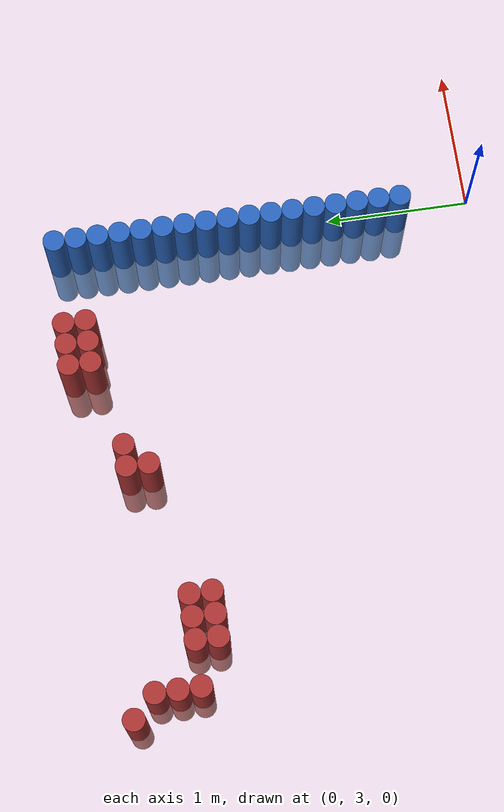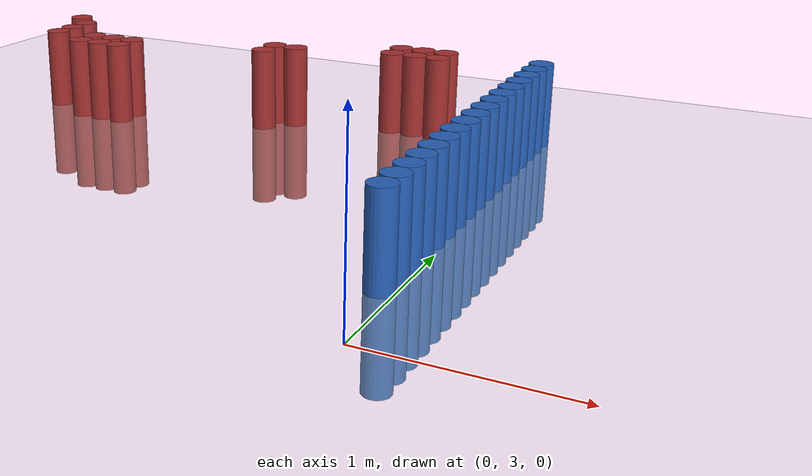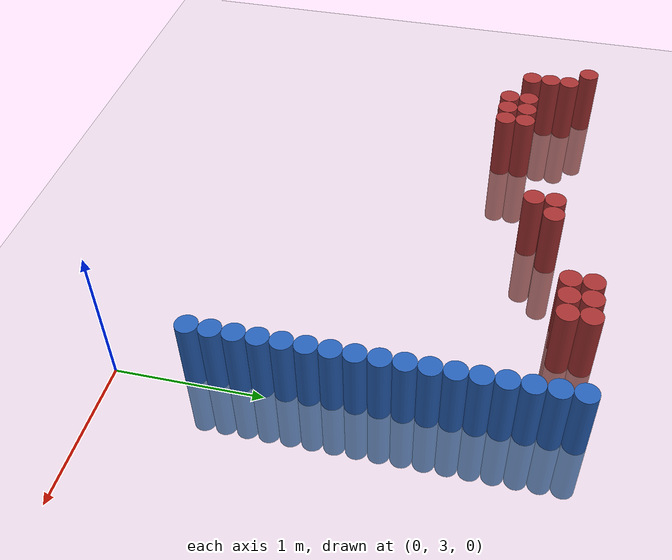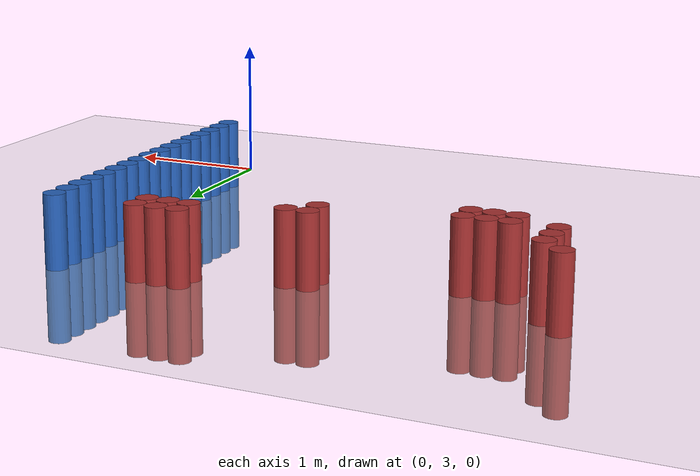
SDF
<sdf version="1.6">
 <world name="default">
  <model name="ground_plane">
   <static>1</static>
   <link name="link">
    <collision name="collision">
     <geometry><plane><normal>0 0 1</normal><size>100 100</size></plane></geometry>
     <surface><friction><ode><mu>100</mu><mu2>50</mu2></ode></friction></surface>
    </collision>
    <visual name="visual">
     <cast_shadows>0</cast_shadows>
     <geometry><plane><normal>0 0 1</normal><size>100 100</size></plane></geometry>
     <material>
      <script><uri>file://media/materials/scripts/gazebo.material</uri><name>Gazebo/Grey</name></script>
     </material>
    </visual>
   </link>
  </model>
  <model name="unit_cylinder_74">
   <static>1</static>
   <pose>-0.075000 3.525000 0.000000 0.000000 0.000000 0.000000</pose>
   <link name="link">
    <inertial>
     <mass>1</mass>
     <inertia><ixx>0.145833</ixx><ixy>0</ixy><ixz>0</ixz><iyy>0.145833</iyy><iyz>0</iyz><izz>0.125</izz></inertia>
    </inertial>
    <collision name="collision">
     <geometry><cylinder><radius>0.075000</radius><length>1</length></cylinder></geometry>
    </collision>
    <visual name="visual">
     <geometry><cylinder><radius>0.075000</radius><length>1</length></cylinder></geometry>
     <material>
      <ambient>0.152000 0.379000 0.720000 1</ambient>
      <diffuse>0.152000 0.379000 0.720000 1</diffuse>
     </material>
     <material>
      <script><name>Gazebo/Grey</name><uri>file://media/materials/scripts/gazebo.material</uri></script>
     </material>
    </visual>
    <sensor name="sensor_contact" type="contact"><contact><collision>collision</collision></contact></sensor>
   </link>
   <plugin filename="gz-sim-touchplugin-system" name="gz::sim::systems::TouchPlugin">
    <target>robot</target>
    <namespace>robot</namespace>
    <time>0.001</time>
    <enabled>true</enabled>
   </plugin>
  </model>
  <model name="unit_cylinder_76">
   <static>1</static>
   <pose>-0.075000 3.675000 0.000000 0.000000 0.000000 0.000000</pose>
   <link name="link">
    <inertial>
     <mass>1</mass>
     <inertia><ixx>0.145833</ixx><ixy>0</ixy><ixz>0</ixz><iyy>0.145833</iyy><iyz>0</iyz><izz>0.125</izz></inertia>
    </inertial>
    <collision name="collision">
     <geometry><cylinder><radius>0.075000</radius><length>1</length></cylinder></geometry>
    </collision>
    <visual name="visual">
     <geometry><cylinder><radius>0.075000</radius><length>1</length></cylinder></geometry>
     <material>
      <ambient>0.152000 0.379000 0.720000 1</ambient>
      <diffuse>0.152000 0.379000 0.720000 1</diffuse>
     </material>
     <material>
      <script><name>Gazebo/Grey</name><uri>file://media/materials/scripts/gazebo.material</uri></script>
     </material>
    </visual>
    <sensor name="sensor_contact" type="contact"><contact><collision>collision</collision></contact></sensor>
   </link>
   <plugin filename="gz-sim-touchplugin-system" name="gz::sim::systems::TouchPlugin">
    <target>robot</target>
    <namespace>robot</namespace>
    <time>0.001</time>
    <enabled>true</enabled>
   </plugin>
  </model>
  <model name="unit_cylinder_78">
   <static>1</static>
   <pose>-0.075000 3.825000 0.000000 0.000000 0.000000 0.000000</pose>
   <link name="link">
    <inertial>
     <mass>1</mass>
     <inertia><ixx>0.145833</ixx><ixy>0</ixy><ixz>0</ixz><iyy>0.145833</iyy><iyz>0</iyz><izz>0.125</izz></inertia>
    </inertial>
    <collision name="collision">
     <geometry><cylinder><radius>0.075000</radius><length>1</length></cylinder></geometry>
    </collision>
    <visual name="visual">
     <geometry><cylinder><radius>0.075000</radius><length>1</length></cylinder></geometry>
     <material>
      <ambient>0.152000 0.379000 0.720000 1</ambient>
      <diffuse>0.152000 0.379000 0.720000 1</diffuse>
     </material>
     <material>
      <script><name>Gazebo/Grey</name><uri>file://media/materials/scripts/gazebo.material</uri></script>
     </material>
    </visual>
    <sensor name="sensor_contact" type="contact"><contact><collision>collision</collision></contact></sensor>
   </link>
   <plugin filename="gz-sim-touchplugin-system" name="gz::sim::systems::TouchPlugin">
    <target>robot</target>
    <namespace>robot</namespace>
    <time>0.001</time>
    <enabled>true</enabled>
   </plugin>
  </model>
  <model name="unit_cylinder_80">
   <static>1</static>
   <pose>-0.075000 3.975000 0.000000 0.000000 0.000000 0.000000</pose>
   <link name="link">
    <inertial>
     <mass>1</mass>
     <inertia><ixx>0.145833</ixx><ixy>0</ixy><ixz>0</ixz><iyy>0.145833</iyy><iyz>0</iyz><izz>0.125</izz></inertia>
    </inertial>
    <collision name="collision">
     <geometry><cylinder><radius>0.075000</radius><length>1</length></cylinder></geometry>
    </collision>
    <visual name="visual">
     <geometry><cylinder><radius>0.075000</radius><length>1</length></cylinder></geometry>
     <material>
      <ambient>0.152000 0.379000 0.720000 1</ambient>
      <diffuse>0.152000 0.379000 0.720000 1</diffuse>
     </material>
     <material>
      <script><name>Gazebo/Grey</name><uri>file://media/materials/scripts/gazebo.material</uri></script>
     </material>
    </visual>
    <sensor name="sensor_contact" type="contact"><contact><collision>collision</collision></contact></sensor>
   </link>
   <plugin filename="gz-sim-touchplugin-system" name="gz::sim::systems::TouchPlugin">
    <target>robot</target>
    <namespace>robot</namespace>
    <time>0.001</time>
    <enabled>true</enabled>
   </plugin>
  </model>
  <model name="unit_cylinder_82">
   <static>1</static>
   <pose>-0.075000 4.125000 0.000000 0.000000 0.000000 0.000000</pose>
   <link name="link">
    <inertial>
     <mass>1</mass>
     <inertia><ixx>0.145833</ixx><ixy>0</ixy><ixz>0</ixz><iyy>0.145833</iyy><iyz>0</iyz><izz>0.125</izz></inertia>
    </inertial>
    <collision name="collision">
     <geometry><cylinder><radius>0.075000</radius><length>1</length></cylinder></geometry>
    </collision>
    <visual name="visual">
     <geometry><cylinder><radius>0.075000</radius><length>1</length></cylinder></geometry>
     <material>
      <ambient>0.152000 0.379000 0.720000 1</ambient>
      <diffuse>0.152000 0.379000 0.720000 1</diffuse>
     </material>
     <material>
      <script><name>Gazebo/Grey</name><uri>file://media/materials/scripts/gazebo.material</uri></script>
     </material>
    </visual>
    <sensor name="sensor_contact" type="contact"><contact><collision>collision</collision></contact></sensor>
   </link>
   <plugin filename="gz-sim-touchplugin-system" name="gz::sim::systems::TouchPlugin">
    <target>robot</target>
    <namespace>robot</namespace>
    <time>0.001</time>
    <enabled>true</enabled>
   </plugin>
  </model>
  <model name="unit_cylinder_84">
   <static>1</static>
   <pose>-0.075000 4.275000 0.000000 0.000000 0.000000 0.000000</pose>
   <link name="link">
    <inertial>
     <mass>1</mass>
     <inertia><ixx>0.145833</ixx><ixy>0</ixy><ixz>0</ixz><iyy>0.145833</iyy><iyz>0</iyz><izz>0.125</izz></inertia>
    </inertial>
    <collision name="collision">
     <geometry><cylinder><radius>0.075000</radius><length>1</length></cylinder></geometry>
    </collision>
    <visual name="visual">
     <geometry><cylinder><radius>0.075000</radius><length>1</length></cylinder></geometry>
     <material>
      <ambient>0.152000 0.379000 0.720000 1</ambient>
      <diffuse>0.152000 0.379000 0.720000 1</diffuse>
     </material>
     <material>
      <script><name>Gazebo/Grey</name><uri>file://media/materials/scripts/gazebo.material</uri></script>
     </material>
    </visual>
    <sensor name="sensor_contact" type="contact"><contact><collision>collision</collision></contact></sensor>
   </link>
   <plugin filename="gz-sim-touchplugin-system" name="gz::sim::systems::TouchPlugin">
    <target>robot</target>
    <namespace>robot</namespace>
    <time>0.001</time>
    <enabled>true</enabled>
   </plugin>
  </model>
  <model name="unit_cylinder_86">
   <static>1</static>
   <pose>-0.075000 4.425000 0.000000 0.000000 0.000000 0.000000</pose>
   <link name="link">
    <inertial>
     <mass>1</mass>
     <inertia><ixx>0.145833</ixx><ixy>0</ixy><ixz>0</ixz><iyy>0.145833</iyy><iyz>0</iyz><izz>0.125</izz></inertia>
    </inertial>
    <collision name="collision">
     <geometry><cylinder><radius>0.075000</radius><length>1</length></cylinder></geometry>
    </collision>
    <visual name="visual">
     <geometry><cylinder><radius>0.075000</radius><length>1</length></cylinder></geometry>
     <material>
      <ambient>0.152000 0.379000 0.720000 1</ambient>
      <diffuse>0.152000 0.379000 0.720000 1</diffuse>
     </material>
     <material>
      <script><name>Gazebo/Grey</name><uri>file://media/materials/scripts/gazebo.material</uri></script>
     </material>
    </visual>
    <sensor name="sensor_contact" type="contact"><contact><collision>collision</collision></contact></sensor>
   </link>
   <plugin filename="gz-sim-touchplugin-system" name="gz::sim::systems::TouchPlugin">
    <target>robot</target>
    <namespace>robot</namespace>
    <time>0.001</time>
    <enabled>true</enabled>
   </plugin>
  </model>
  <model name="unit_cylinder_88">
   <static>1</static>
   <pose>-0.075000 4.575000 0.000000 0.000000 0.000000 0.000000</pose>
   <link name="link">
    <inertial>
     <mass>1</mass>
     <inertia><ixx>0.145833</ixx><ixy>0</ixy><ixz>0</ixz><iyy>0.145833</iyy><iyz>0</iyz><izz>0.125</izz></inertia>
    </inertial>
    <collision name="collision">
     <geometry><cylinder><radius>0.075000</radius><length>1</length></cylinder></geometry>
    </collision>
    <visual name="visual">
     <geometry><cylinder><radius>0.075000</radius><length>1</length></cylinder></geometry>
     <material>
      <ambient>0.152000 0.379000 0.720000 1</ambient>
      <diffuse>0.152000 0.379000 0.720000 1</diffuse>
     </material>
     <material>
      <script><name>Gazebo/Grey</name><uri>file://media/materials/scripts/gazebo.material</uri></script>
     </material>
    </visual>
    <sensor name="sensor_contact" type="contact"><contact><collision>collision</collision></contact></sensor>
   </link>
   <plugin filename="gz-sim-touchplugin-system" name="gz::sim::systems::TouchPlugin">
    <target>robot</target>
    <namespace>robot</namespace>
    <time>0.001</time>
    <enabled>true</enabled>
   </plugin>
  </model>
  <model name="unit_cylinder_90">
   <static>1</static>
   <pose>-0.075000 4.725000 0.000000 0.000000 0.000000 0.000000</pose>
   <link name="link">
    <inertial>
     <mass>1</mass>
     <inertia><ixx>0.145833</ixx><ixy>0</ixy><ixz>0</ixz><iyy>0.145833</iyy><iyz>0</iyz><izz>0.125</izz></inertia>
    </inertial>
    <collision name="collision">
     <geometry><cylinder><radius>0.075000</radius><length>1</length></cylinder></geometry>
    </collision>
    <visual name="visual">
     <geometry><cylinder><radius>0.075000</radius><length>1</length></cylinder></geometry>
     <material>
      <ambient>0.152000 0.379000 0.720000 1</ambient>
      <diffuse>0.152000 0.379000 0.720000 1</diffuse>
     </material>
     <material>
      <script><name>Gazebo/Grey</name><uri>file://media/materials/scripts/gazebo.material</uri></script>
     </material>
    </visual>
    <sensor name="sensor_contact" type="contact"><contact><collision>collision</collision></contact></sensor>
   </link>
   <plugin filename="gz-sim-touchplugin-system" name="gz::sim::systems::TouchPlugin">
    <target>robot</target>
    <namespace>robot</namespace>
    <time>0.001</time>
    <enabled>true</enabled>
   </plugin>
  </model>
  <model name="unit_cylinder_92">
   <static>1</static>
   <pose>-0.075000 4.875000 0.000000 0.000000 0.000000 0.000000</pose>
   <link name="link">
    <inertial>
     <mass>1</mass>
     <inertia><ixx>0.145833</ixx><ixy>0</ixy><ixz>0</ixz><iyy>0.145833</iyy><iyz>0</iyz><izz>0.125</izz></inertia>
    </inertial>
    <collision name="collision">
     <geometry><cylinder><radius>0.075000</radius><length>1</length></cylinder></geometry>
    </collision>
    <visual name="visual">
     <geometry><cylinder><radius>0.075000</radius><length>1</length></cylinder></geometry>
     <material>
      <ambient>0.152000 0.379000 0.720000 1</ambient>
      <diffuse>0.152000 0.379000 0.720000 1</diffuse>
     </material>
     <material>
      <script><name>Gazebo/Grey</name><uri>file://media/materials/scripts/gazebo.material</uri></script>
     </material>
    </visual>
    <sensor name="sensor_contact" type="contact"><contact><collision>collision</collision></contact></sensor>
   </link>
   <plugin filename="gz-sim-touchplugin-system" name="gz::sim::systems::TouchPlugin">
    <target>robot</target>
    <namespace>robot</namespace>
    <time>0.001</time>
    <enabled>true</enabled>
   </plugin>
  </model>
  <model name="unit_cylinder_94">
   <static>1</static>
   <pose>-0.075000 5.025000 0.000000 0.000000 0.000000 0.000000</pose>
   <link name="link">
    <inertial>
     <mass>1</mass>
     <inertia><ixx>0.145833</ixx><ixy>0</ixy><ixz>0</ixz><iyy>0.145833</iyy><iyz>0</iyz><izz>0.125</izz></inertia>
    </inertial>
    <collision name="collision">
     <geometry><cylinder><radius>0.075000</radius><length>1</length></cylinder></geometry>
    </collision>
    <visual name="visual">
     <geometry><cylinder><radius>0.075000</radius><length>1</length></cylinder></geometry>
     <material>
      <ambient>0.152000 0.379000 0.720000 1</ambient>
      <diffuse>0.152000 0.379000 0.720000 1</diffuse>
     </material>
     <material>
      <script><name>Gazebo/Grey</name><uri>file://media/materials/scripts/gazebo.material</uri></script>
     </material>
    </visual>
    <sensor name="sensor_contact" type="contact"><contact><collision>collision</collision></contact></sensor>
   </link>
   <plugin filename="gz-sim-touchplugin-system" name="gz::sim::systems::TouchPlugin">
    <target>robot</target>
    <namespace>robot</namespace>
    <time>0.001</time>
    <enabled>true</enabled>
   </plugin>
  </model>
  <model name="unit_cylinder_173">
   <static>1</static>
   <pose>-3.375000 5.775000 0.000000 0.000000 0.000000 0.000000</pose>
   <link name="link">
    <inertial>
     <mass>1</mass>
     <inertia><ixx>0.145833</ixx><ixy>0</ixy><ixz>0</ixz><iyy>0.145833</iyy><iyz>0</iyz><izz>0.125</izz></inertia>
    </inertial>
    <collision name="collision">
     <geometry><cylinder><radius>0.075000</radius><length>1</length></cylinder></geometry>
    </collision>
    <visual name="visual">
     <geometry><cylinder><radius>0.075000</radius><length>1</length></cylinder></geometry>
     <material>
      <ambient>0.648000 0.192000 0.192000 1</ambient>
      <diffuse>0.648000 0.192000 0.192000 1</diffuse>
     </material>
     <material>
      <script><name>Gazebo/Grey</name><uri>file://media/materials/scripts/gazebo.material</uri></script>
     </material>
    </visual>
    <sensor name="sensor_contact" type="contact"><contact><collision>collision</collision></contact></sensor>
   </link>
   <plugin filename="gz-sim-touchplugin-system" name="gz::sim::systems::TouchPlugin">
    <target>robot</target>
    <namespace>robot</namespace>
    <time>0.001</time>
    <enabled>true</enabled>
   </plugin>
  </model>
  <model name="unit_cylinder_182">
   <static>1</static>
   <pose>-3.225000 5.325000 0.000000 0.000000 0.000000 0.000000</pose>
   <link name="link">
    <inertial>
     <mass>1</mass>
     <inertia><ixx>0.145833</ixx><ixy>0</ixy><ixz>0</ixz><iyy>0.145833</iyy><iyz>0</iyz><izz>0.125</izz></inertia>
    </inertial>
    <collision name="collision">
     <geometry><cylinder><radius>0.075000</radius><length>1</length></cylinder></geometry>
    </collision>
    <visual name="visual">
     <geometry><cylinder><radius>0.075000</radius><length>1</length></cylinder></geometry>
     <material>
      <ambient>0.648000 0.192000 0.192000 1</ambient>
      <diffuse>0.648000 0.192000 0.192000 1</diffuse>
     </material>
     <material>
      <script><name>Gazebo/Grey</name><uri>file://media/materials/scripts/gazebo.material</uri></script>
     </material>
    </visual>
    <sensor name="sensor_contact" type="contact"><contact><collision>collision</collision></contact></sensor>
   </link>
   <plugin filename="gz-sim-touchplugin-system" name="gz::sim::systems::TouchPlugin">
    <target>robot</target>
    <namespace>robot</namespace>
    <time>0.001</time>
    <enabled>true</enabled>
   </plugin>
  </model>
  <model name="unit_cylinder_183">
   <static>1</static>
   <pose>-3.225000 5.475000 0.000000 0.000000 0.000000 0.000000</pose>
   <link name="link">
    <inertial>
     <mass>1</mass>
     <inertia><ixx>0.145833</ixx><ixy>0</ixy><ixz>0</ixz><iyy>0.145833</iyy><iyz>0</iyz><izz>0.125</izz></inertia>
    </inertial>
    <collision name="collision">
     <geometry><cylinder><radius>0.075000</radius><length>1</length></cylinder></geometry>
    </collision>
    <visual name="visual">
     <geometry><cylinder><radius>0.075000</radius><length>1</length></cylinder></geometry>
     <material>
      <ambient>0.648000 0.192000 0.192000 1</ambient>
      <diffuse>0.648000 0.192000 0.192000 1</diffuse>
     </material>
     <material>
      <script><name>Gazebo/Grey</name><uri>file://media/materials/scripts/gazebo.material</uri></script>
     </material>
    </visual>
    <sensor name="sensor_contact" type="contact"><contact><collision>collision</collision></contact></sensor>
   </link>
   <plugin filename="gz-sim-touchplugin-system" name="gz::sim::systems::TouchPlugin">
    <target>robot</target>
    <namespace>robot</namespace>
    <time>0.001</time>
    <enabled>true</enabled>
   </plugin>
  </model>
  <model name="unit_cylinder_184">
   <static>1</static>
   <pose>-3.225000 5.625000 0.000000 0.000000 0.000000 0.000000</pose>
   <link name="link">
    <inertial>
     <mass>1</mass>
     <inertia><ixx>0.145833</ixx><ixy>0</ixy><ixz>0</ixz><iyy>0.145833</iyy><iyz>0</iyz><izz>0.125</izz></inertia>
    </inertial>
    <collision name="collision">
     <geometry><cylinder><radius>0.075000</radius><length>1</length></cylinder></geometry>
    </collision>
    <visual name="visual">
     <geometry><cylinder><radius>0.075000</radius><length>1</length></cylinder></geometry>
     <material>
      <ambient>0.648000 0.192000 0.192000 1</ambient>
      <diffuse>0.648000 0.192000 0.192000 1</diffuse>
     </material>
     <material>
      <script><name>Gazebo/Grey</name><uri>file://media/materials/scripts/gazebo.material</uri></script>
     </material>
    </visual>
    <sensor name="sensor_contact" type="contact"><contact><collision>collision</collision></contact></sensor>
   </link>
   <plugin filename="gz-sim-touchplugin-system" name="gz::sim::systems::TouchPlugin">
    <target>robot</target>
    <namespace>robot</namespace>
    <time>0.001</time>
    <enabled>true</enabled>
   </plugin>
  </model>
  <model name="unit_cylinder_194">
   <static>1</static>
   <pose>-2.925000 5.175000 0.000000 0.000000 0.000000 0.000000</pose>
   <link name="link">
    <inertial>
     <mass>1</mass>
     <inertia><ixx>0.145833</ixx><ixy>0</ixy><ixz>0</ixz><iyy>0.145833</iyy><iyz>0</iyz><izz>0.125</izz></inertia>
    </inertial>
    <collision name="collision">
     <geometry><cylinder><radius>0.075000</radius><length>1</length></cylinder></geometry>
    </collision>
    <visual name="visual">
     <geometry><cylinder><radius>0.075000</radius><length>1</length></cylinder></geometry>
     <material>
      <ambient>0.648000 0.192000 0.192000 1</ambient>
      <diffuse>0.648000 0.192000 0.192000 1</diffuse>
     </material>
     <material>
      <script><name>Gazebo/Grey</name><uri>file://media/materials/scripts/gazebo.material</uri></script>
     </material>
    </visual>
    <sensor name="sensor_contact" type="contact"><contact><collision>collision</collision></contact></sensor>
   </link>
   <plugin filename="gz-sim-touchplugin-system" name="gz::sim::systems::TouchPlugin">
    <target>robot</target>
    <namespace>robot</namespace>
    <time>0.001</time>
    <enabled>true</enabled>
   </plugin>
  </model>
  <model name="unit_cylinder_195">
   <static>1</static>
   <pose>-2.925000 5.325000 0.000000 0.000000 0.000000 0.000000</pose>
   <link name="link">
    <inertial>
     <mass>1</mass>
     <inertia><ixx>0.145833</ixx><ixy>0</ixy><ixz>0</ixz><iyy>0.145833</iyy><iyz>0</iyz><izz>0.125</izz></inertia>
    </inertial>
    <collision name="collision">
     <geometry><cylinder><radius>0.075000</radius><length>1</length></cylinder></geometry>
    </collision>
    <visual name="visual">
     <geometry><cylinder><radius>0.075000</radius><length>1</length></cylinder></geometry>
     <material>
      <ambient>0.648000 0.192000 0.192000 1</ambient>
      <diffuse>0.648000 0.192000 0.192000 1</diffuse>
     </material>
     <material>
      <script><name>Gazebo/Grey</name><uri>file://media/materials/scripts/gazebo.material</uri></script>
     </material>
    </visual>
    <sensor name="sensor_contact" type="contact"><contact><collision>collision</collision></contact></sensor>
   </link>
   <plugin filename="gz-sim-touchplugin-system" name="gz::sim::systems::TouchPlugin">
    <target>robot</target>
    <namespace>robot</namespace>
    <time>0.001</time>
    <enabled>true</enabled>
   </plugin>
  </model>
  <model name="unit_cylinder_203">
   <static>1</static>
   <pose>-2.775000 5.175000 0.000000 0.000000 0.000000 0.000000</pose>
   <link name="link">
    <inertial>
     <mass>1</mass>
     <inertia><ixx>0.145833</ixx><ixy>0</ixy><ixz>0</ixz><iyy>0.145833</iyy><iyz>0</iyz><izz>0.125</izz></inertia>
    </inertial>
    <collision name="collision">
     <geometry><cylinder><radius>0.075000</radius><length>1</length></cylinder></geometry>
    </collision>
    <visual name="visual">
     <geometry><cylinder><radius>0.075000</radius><length>1</length></cylinder></geometry>
     <material>
      <ambient>0.648000 0.192000 0.192000 1</ambient>
      <diffuse>0.648000 0.192000 0.192000 1</diffuse>
     </material>
     <material>
      <script><name>Gazebo/Grey</name><uri>file://media/materials/scripts/gazebo.material</uri></script>
     </material>
    </visual>
    <sensor name="sensor_contact" type="contact"><contact><collision>collision</collision></contact></sensor>
   </link>
   <plugin filename="gz-sim-touchplugin-system" name="gz::sim::systems::TouchPlugin">
    <target>robot</target>
    <namespace>robot</namespace>
    <time>0.001</time>
    <enabled>true</enabled>
   </plugin>
  </model>
  <model name="unit_cylinder_204">
   <static>1</static>
   <pose>-2.775000 5.325000 0.000000 0.000000 0.000000 0.000000</pose>
   <link name="link">
    <inertial>
     <mass>1</mass>
     <inertia><ixx>0.145833</ixx><ixy>0</ixy><ixz>0</ixz><iyy>0.145833</iyy><iyz>0</iyz><izz>0.125</izz></inertia>
    </inertial>
    <collision name="collision">
     <geometry><cylinder><radius>0.075000</radius><length>1</length></cylinder></geometry>
    </collision>
    <visual name="visual">
     <geometry><cylinder><radius>0.075000</radius><length>1</length></cylinder></geometry>
     <material>
      <ambient>0.648000 0.192000 0.192000 1</ambient>
      <diffuse>0.648000 0.192000 0.192000 1</diffuse>
     </material>
     <material>
      <script><name>Gazebo/Grey</name><uri>file://media/materials/scripts/gazebo.material</uri></script>
     </material>
    </visual>
    <sensor name="sensor_contact" type="contact"><contact><collision>collision</collision></contact></sensor>
   </link>
   <plugin filename="gz-sim-touchplugin-system" name="gz::sim::systems::TouchPlugin">
    <target>robot</target>
    <namespace>robot</namespace>
    <time>0.001</time>
    <enabled>true</enabled>
   </plugin>
  </model>
  <model name="unit_cylinder_211">
   <static>1</static>
   <pose>-2.625000 5.175000 0.000000 0.000000 0.000000 0.000000</pose>
   <link name="link">
    <inertial>
     <mass>1</mass>
     <inertia><ixx>0.145833</ixx><ixy>0</ixy><ixz>0</ixz><iyy>0.145833</iyy><iyz>0</iyz><izz>0.125</izz></inertia>
    </inertial>
    <collision name="collision">
     <geometry><cylinder><radius>0.075000</radius><length>1</length></cylinder></geometry>
    </collision>
    <visual name="visual">
     <geometry><cylinder><radius>0.075000</radius><length>1</length></cylinder></geometry>
     <material>
      <ambient>0.648000 0.192000 0.192000 1</ambient>
      <diffuse>0.648000 0.192000 0.192000 1</diffuse>
     </material>
     <material>
      <script><name>Gazebo/Grey</name><uri>file://media/materials/scripts/gazebo.material</uri></script>
     </material>
    </visual>
    <sensor name="sensor_contact" type="contact"><contact><collision>collision</collision></contact></sensor>
   </link>
   <plugin filename="gz-sim-touchplugin-system" name="gz::sim::systems::TouchPlugin">
    <target>robot</target>
    <namespace>robot</namespace>
    <time>0.001</time>
    <enabled>true</enabled>
   </plugin>
  </model>
  <model name="unit_cylinder_212">
   <static>1</static>
   <pose>-2.625000 5.325000 0.000000 0.000000 0.000000 0.000000</pose>
   <link name="link">
    <inertial>
     <mass>1</mass>
     <inertia><ixx>0.145833</ixx><ixy>0</ixy><ixz>0</ixz><iyy>0.145833</iyy><iyz>0</iyz><izz>0.125</izz></inertia>
    </inertial>
    <collision name="collision">
     <geometry><cylinder><radius>0.075000</radius><length>1</length></cylinder></geometry>
    </collision>
    <visual name="visual">
     <geometry><cylinder><radius>0.075000</radius><length>1</length></cylinder></geometry>
     <material>
      <ambient>0.648000 0.192000 0.192000 1</ambient>
      <diffuse>0.648000 0.192000 0.192000 1</diffuse>
     </material>
     <material>
      <script><name>Gazebo/Grey</name><uri>file://media/materials/scripts/gazebo.material</uri></script>
     </material>
    </visual>
    <sensor name="sensor_contact" type="contact"><contact><collision>collision</collision></contact></sensor>
   </link>
   <plugin filename="gz-sim-touchplugin-system" name="gz::sim::systems::TouchPlugin">
    <target>robot</target>
    <namespace>robot</namespace>
    <time>0.001</time>
    <enabled>true</enabled>
   </plugin>
  </model>
  <model name="unit_cylinder_230">
   <static>1</static>
   <pose>-1.725000 5.475000 0.000000 0.000000 0.000000 0.000000</pose>
   <link name="link">
    <inertial>
     <mass>1</mass>
     <inertia><ixx>0.145833</ixx><ixy>0</ixy><ixz>0</ixz><iyy>0.145833</iyy><iyz>0</iyz><izz>0.125</izz></inertia>
    </inertial>
    <collision name="collision">
     <geometry><cylinder><radius>0.075000</radius><length>1</length></cylinder></geometry>
    </collision>
    <visual name="visual">
     <geometry><cylinder><radius>0.075000</radius><length>1</length></cylinder></geometry>
     <material>
      <ambient>0.648000 0.192000 0.192000 1</ambient>
      <diffuse>0.648000 0.192000 0.192000 1</diffuse>
     </material>
     <material>
      <script><name>Gazebo/Grey</name><uri>file://media/materials/scripts/gazebo.material</uri></script>
     </material>
    </visual>
    <sensor name="sensor_contact" type="contact"><contact><collision>collision</collision></contact></sensor>
   </link>
   <plugin filename="gz-sim-touchplugin-system" name="gz::sim::systems::TouchPlugin">
    <target>robot</target>
    <namespace>robot</namespace>
    <time>0.001</time>
    <enabled>true</enabled>
   </plugin>
  </model>
  <model name="unit_cylinder_231">
   <static>1</static>
   <pose>-1.725000 5.625000 0.000000 0.000000 0.000000 0.000000</pose>
   <link name="link">
    <inertial>
     <mass>1</mass>
     <inertia><ixx>0.145833</ixx><ixy>0</ixy><ixz>0</ixz><iyy>0.145833</iyy><iyz>0</iyz><izz>0.125</izz></inertia>
    </inertial>
    <collision name="collision">
     <geometry><cylinder><radius>0.075000</radius><length>1</length></cylinder></geometry>
    </collision>
    <visual name="visual">
     <geometry><cylinder><radius>0.075000</radius><length>1</length></cylinder></geometry>
     <material>
      <ambient>0.648000 0.192000 0.192000 1</ambient>
      <diffuse>0.648000 0.192000 0.192000 1</diffuse>
     </material>
     <material>
      <script><name>Gazebo/Grey</name><uri>file://media/materials/scripts/gazebo.material</uri></script>
     </material>
    </visual>
    <sensor name="sensor_contact" type="contact"><contact><collision>collision</collision></contact></sensor>
   </link>
   <plugin filename="gz-sim-touchplugin-system" name="gz::sim::systems::TouchPlugin">
    <target>robot</target>
    <namespace>robot</namespace>
    <time>0.001</time>
    <enabled>true</enabled>
   </plugin>
  </model>
  <model name="unit_cylinder_232">
   <static>1</static>
   <pose>-1.575000 5.625000 0.000000 0.000000 0.000000 0.000000</pose>
   <link name="link">
    <inertial>
     <mass>1</mass>
     <inertia><ixx>0.145833</ixx><ixy>0</ixy><ixz>0</ixz><iyy>0.145833</iyy><iyz>0</iyz><izz>0.125</izz></inertia>
    </inertial>
    <collision name="collision">
     <geometry><cylinder><radius>0.075000</radius><length>1</length></cylinder></geometry>
    </collision>
    <visual name="visual">
     <geometry><cylinder><radius>0.075000</radius><length>1</length></cylinder></geometry>
     <material>
      <ambient>0.648000 0.192000 0.192000 1</ambient>
      <diffuse>0.648000 0.192000 0.192000 1</diffuse>
     </material>
     <material>
      <script><name>Gazebo/Grey</name><uri>file://media/materials/scripts/gazebo.material</uri></script>
     </material>
    </visual>
    <sensor name="sensor_contact" type="contact"><contact><collision>collision</collision></contact></sensor>
   </link>
   <plugin filename="gz-sim-touchplugin-system" name="gz::sim::systems::TouchPlugin">
    <target>robot</target>
    <namespace>robot</namespace>
    <time>0.001</time>
    <enabled>true</enabled>
   </plugin>
  </model>
  <model name="unit_cylinder_233">
   <static>1</static>
   <pose>-0.975000 5.775000 0.000000 0.000000 0.000000 0.000000</pose>
   <link name="link">
    <inertial>
     <mass>1</mass>
     <inertia><ixx>0.145833</ixx><ixy>0</ixy><ixz>0</ixz><iyy>0.145833</iyy><iyz>0</iyz><izz>0.125</izz></inertia>
    </inertial>
    <collision name="collision">
     <geometry><cylinder><radius>0.075000</radius><length>1</length></cylinder></geometry>
    </collision>
    <visual name="visual">
     <geometry><cylinder><radius>0.075000</radius><length>1</length></cylinder></geometry>
     <material>
      <ambient>0.648000 0.192000 0.192000 1</ambient>
      <diffuse>0.648000 0.192000 0.192000 1</diffuse>
     </material>
     <material>
      <script><name>Gazebo/Grey</name><uri>file://media/materials/scripts/gazebo.material</uri></script>
     </material>
    </visual>
    <sensor name="sensor_contact" type="contact"><contact><collision>collision</collision></contact></sensor>
   </link>
   <plugin filename="gz-sim-touchplugin-system" name="gz::sim::systems::TouchPlugin">
    <target>robot</target>
    <namespace>robot</namespace>
    <time>0.001</time>
    <enabled>true</enabled>
   </plugin>
  </model>
  <model name="unit_cylinder_234">
   <static>1</static>
   <pose>-0.975000 5.925000 0.000000 0.000000 0.000000 0.000000</pose>
   <link name="link">
    <inertial>
     <mass>1</mass>
     <inertia><ixx>0.145833</ixx><ixy>0</ixy><ixz>0</ixz><iyy>0.145833</iyy><iyz>0</iyz><izz>0.125</izz></inertia>
    </inertial>
    <collision name="collision">
     <geometry><cylinder><radius>0.075000</radius><length>1</length></cylinder></geometry>
    </collision>
    <visual name="visual">
     <geometry><cylinder><radius>0.075000</radius><length>1</length></cylinder></geometry>
     <material>
      <ambient>0.648000 0.192000 0.192000 1</ambient>
      <diffuse>0.648000 0.192000 0.192000 1</diffuse>
     </material>
     <material>
      <script><name>Gazebo/Grey</name><uri>file://media/materials/scripts/gazebo.material</uri></script>
     </material>
    </visual>
    <sensor name="sensor_contact" type="contact"><contact><collision>collision</collision></contact></sensor>
   </link>
   <plugin filename="gz-sim-touchplugin-system" name="gz::sim::systems::TouchPlugin">
    <target>robot</target>
    <namespace>robot</namespace>
    <time>0.001</time>
    <enabled>true</enabled>
   </plugin>
  </model>
  <model name="unit_cylinder_235">
   <static>1</static>
   <pose>-0.825000 5.775000 0.000000 0.000000 0.000000 0.000000</pose>
   <link name="link">
    <inertial>
     <mass>1</mass>
     <inertia><ixx>0.145833</ixx><ixy>0</ixy><ixz>0</ixz><iyy>0.145833</iyy><iyz>0</iyz><izz>0.125</izz></inertia>
    </inertial>
    <collision name="collision">
     <geometry><cylinder><radius>0.075000</radius><length>1</length></cylinder></geometry>
    </collision>
    <visual name="visual">
     <geometry><cylinder><radius>0.075000</radius><length>1</length></cylinder></geometry>
     <material>
      <ambient>0.648000 0.192000 0.192000 1</ambient>
      <diffuse>0.648000 0.192000 0.192000 1</diffuse>
     </material>
     <material>
      <script><name>Gazebo/Grey</name><uri>file://media/materials/scripts/gazebo.material</uri></script>
     </material>
    </visual>
    <sensor name="sensor_contact" type="contact"><contact><collision>collision</collision></contact></sensor>
   </link>
   <plugin filename="gz-sim-touchplugin-system" name="gz::sim::systems::TouchPlugin">
    <target>robot</target>
    <namespace>robot</namespace>
    <time>0.001</time>
    <enabled>true</enabled>
   </plugin>
  </model>
  <model name="unit_cylinder_236">
   <static>1</static>
   <pose>-0.825000 5.925000 0.000000 0.000000 0.000000 0.000000</pose>
   <link name="link">
    <inertial>
     <mass>1</mass>
     <inertia><ixx>0.145833</ixx><ixy>0</ixy><ixz>0</ixz><iyy>0.145833</iyy><iyz>0</iyz><izz>0.125</izz></inertia>
    </inertial>
    <collision name="collision">
     <geometry><cylinder><radius>0.075000</radius><length>1</length></cylinder></geometry>
    </collision>
    <visual name="visual">
     <geometry><cylinder><radius>0.075000</radius><length>1</length></cylinder></geometry>
     <material>
      <ambient>0.648000 0.192000 0.192000 1</ambient>
      <diffuse>0.648000 0.192000 0.192000 1</diffuse>
     </material>
     <material>
      <script><name>Gazebo/Grey</name><uri>file://media/materials/scripts/gazebo.material</uri></script>
     </material>
    </visual>
    <sensor name="sensor_contact" type="contact"><contact><collision>collision</collision></contact></sensor>
   </link>
   <plugin filename="gz-sim-touchplugin-system" name="gz::sim::systems::TouchPlugin">
    <target>robot</target>
    <namespace>robot</namespace>
    <time>0.001</time>
    <enabled>true</enabled>
   </plugin>
  </model>
  <model name="unit_cylinder_238">
   <static>1</static>
   <pose>-0.675000 5.775000 0.000000 0.000000 0.000000 0.000000</pose>
   <link name="link">
    <inertial>
     <mass>1</mass>
     <inertia><ixx>0.145833</ixx><ixy>0</ixy><ixz>0</ixz><iyy>0.145833</iyy><iyz>0</iyz><izz>0.125</izz></inertia>
    </inertial>
    <collision name="collision">
     <geometry><cylinder><radius>0.075000</radius><length>1</length></cylinder></geometry>
    </collision>
    <visual name="visual">
     <geometry><cylinder><radius>0.075000</radius><length>1</length></cylinder></geometry>
     <material>
      <ambient>0.648000 0.192000 0.192000 1</ambient>
      <diffuse>0.648000 0.192000 0.192000 1</diffuse>
     </material>
     <material>
      <script><name>Gazebo/Grey</name><uri>file://media/materials/scripts/gazebo.material</uri></script>
     </material>
    </visual>
    <sensor name="sensor_contact" type="contact"><contact><collision>collision</collision></contact></sensor>
   </link>
   <plugin filename="gz-sim-touchplugin-system" name="gz::sim::systems::TouchPlugin">
    <target>robot</target>
    <namespace>robot</namespace>
    <time>0.001</time>
    <enabled>true</enabled>
   </plugin>
  </model>
  <model name="unit_cylinder_239">
   <static>1</static>
   <pose>-0.675000 5.925000 0.000000 0.000000 0.000000 0.000000</pose>
   <link name="link">
    <inertial>
     <mass>1</mass>
     <inertia><ixx>0.145833</ixx><ixy>0</ixy><ixz>0</ixz><iyy>0.145833</iyy><iyz>0</iyz><izz>0.125</izz></inertia>
    </inertial>
    <collision name="collision">
     <geometry><cylinder><radius>0.075000</radius><length>1</length></cylinder></geometry>
    </collision>
    <visual name="visual">
     <geometry><cylinder><radius>0.075000</radius><length>1</length></cylinder></geometry>
     <material>
      <ambient>0.648000 0.192000 0.192000 1</ambient>
      <diffuse>0.648000 0.192000 0.192000 1</diffuse>
     </material>
     <material>
      <script><name>Gazebo/Grey</name><uri>file://media/materials/scripts/gazebo.material</uri></script>
     </material>
    </visual>
    <sensor name="sensor_contact" type="contact"><contact><collision>collision</collision></contact></sensor>
   </link>
   <plugin filename="gz-sim-touchplugin-system" name="gz::sim::systems::TouchPlugin">
    <target>robot</target>
    <namespace>robot</namespace>
    <time>0.001</time>
    <enabled>true</enabled>
   </plugin>
  </model>
  <model name="unit_cylinder_261">
   <static>1</static>
   <pose>-0.075000 5.175000 0.000000 0.000000 0.000000 0.000000</pose>
   <link name="link">
    <inertial>
     <mass>1</mass>
     <inertia><ixx>0.145833</ixx><ixy>0</ixy><ixz>0</ixz><iyy>0.145833</iyy><iyz>0</iyz><izz>0.125</izz></inertia>
    </inertial>
    <collision name="collision">
     <geometry><cylinder><radius>0.075000</radius><length>1</length></cylinder></geometry>
    </collision>
    <visual name="visual">
     <geometry><cylinder><radius>0.075000</radius><length>1</length></cylinder></geometry>
     <material>
      <ambient>0.152000 0.379000 0.720000 1</ambient>
      <diffuse>0.152000 0.379000 0.720000 1</diffuse>
     </material>
     <material>
      <script><name>Gazebo/Grey</name><uri>file://media/materials/scripts/gazebo.material</uri></script>
     </material>
    </visual>
    <sensor name="sensor_contact" type="contact"><contact><collision>collision</collision></contact></sensor>
   </link>
   <plugin filename="gz-sim-touchplugin-system" name="gz::sim::systems::TouchPlugin">
    <target>robot</target>
    <namespace>robot</namespace>
    <time>0.001</time>
    <enabled>true</enabled>
   </plugin>
  </model>
  <model name="unit_cylinder_262">
   <static>1</static>
   <pose>-0.075000 5.325000 0.000000 0.000000 0.000000 0.000000</pose>
   <link name="link">
    <inertial>
     <mass>1</mass>
     <inertia><ixx>0.145833</ixx><ixy>0</ixy><ixz>0</ixz><iyy>0.145833</iyy><iyz>0</iyz><izz>0.125</izz></inertia>
    </inertial>
    <collision name="collision">
     <geometry><cylinder><radius>0.075000</radius><length>1</length></cylinder></geometry>
    </collision>
    <visual name="visual">
     <geometry><cylinder><radius>0.075000</radius><length>1</length></cylinder></geometry>
     <material>
      <ambient>0.152000 0.379000 0.720000 1</ambient>
      <diffuse>0.152000 0.379000 0.720000 1</diffuse>
     </material>
     <material>
      <script><name>Gazebo/Grey</name><uri>file://media/materials/scripts/gazebo.material</uri></script>
     </material>
    </visual>
    <sensor name="sensor_contact" type="contact"><contact><collision>collision</collision></contact></sensor>
   </link>
   <plugin filename="gz-sim-touchplugin-system" name="gz::sim::systems::TouchPlugin">
    <target>robot</target>
    <namespace>robot</namespace>
    <time>0.001</time>
    <enabled>true</enabled>
   </plugin>
  </model>
  <model name="unit_cylinder_263">
   <static>1</static>
   <pose>-0.075000 5.475000 0.000000 0.000000 0.000000 0.000000</pose>
   <link name="link">
    <inertial>
     <mass>1</mass>
     <inertia><ixx>0.145833</ixx><ixy>0</ixy><ixz>0</ixz><iyy>0.145833</iyy><iyz>0</iyz><izz>0.125</izz></inertia>
    </inertial>
    <collision name="collision">
     <geometry><cylinder><radius>0.075000</radius><length>1</length></cylinder></geometry>
    </collision>
    <visual name="visual">
     <geometry><cylinder><radius>0.075000</radius><length>1</length></cylinder></geometry>
     <material>
      <ambient>0.152000 0.379000 0.720000 1</ambient>
      <diffuse>0.152000 0.379000 0.720000 1</diffuse>
     </material>
     <material>
      <script><name>Gazebo/Grey</name><uri>file://media/materials/scripts/gazebo.material</uri></script>
     </material>
    </visual>
    <sensor name="sensor_contact" type="contact"><contact><collision>collision</collision></contact></sensor>
   </link>
   <plugin filename="gz-sim-touchplugin-system" name="gz::sim::systems::TouchPlugin">
    <target>robot</target>
    <namespace>robot</namespace>
    <time>0.001</time>
    <enabled>true</enabled>
   </plugin>
  </model>
  <model name="unit_cylinder_264">
   <static>1</static>
   <pose>-0.075000 5.625000 0.000000 0.000000 0.000000 0.000000</pose>
   <link name="link">
    <inertial>
     <mass>1</mass>
     <inertia><ixx>0.145833</ixx><ixy>0</ixy><ixz>0</ixz><iyy>0.145833</iyy><iyz>0</iyz><izz>0.125</izz></inertia>
    </inertial>
    <collision name="collision">
     <geometry><cylinder><radius>0.075000</radius><length>1</length></cylinder></geometry>
    </collision>
    <visual name="visual">
     <geometry><cylinder><radius>0.075000</radius><length>1</length></cylinder></geometry>
     <material>
      <ambient>0.152000 0.379000 0.720000 1</ambient>
      <diffuse>0.152000 0.379000 0.720000 1</diffuse>
     </material>
     <material>
      <script><name>Gazebo/Grey</name><uri>file://media/materials/scripts/gazebo.material</uri></script>
     </material>
    </visual>
    <sensor name="sensor_contact" type="contact"><contact><collision>collision</collision></contact></sensor>
   </link>
   <plugin filename="gz-sim-touchplugin-system" name="gz::sim::systems::TouchPlugin">
    <target>robot</target>
    <namespace>robot</namespace>
    <time>0.001</time>
    <enabled>true</enabled>
   </plugin>
  </model>
  <model name="unit_cylinder_265">
   <static>1</static>
   <pose>-0.075000 5.775000 0.000000 0.000000 0.000000 0.000000</pose>
   <link name="link">
    <inertial>
     <mass>1</mass>
     <inertia><ixx>0.145833</ixx><ixy>0</ixy><ixz>0</ixz><iyy>0.145833</iyy><iyz>0</iyz><izz>0.125</izz></inertia>
    </inertial>
    <collision name="collision">
     <geometry><cylinder><radius>0.075000</radius><length>1</length></cylinder></geometry>
    </collision>
    <visual name="visual">
     <geometry><cylinder><radius>0.075000</radius><length>1</length></cylinder></geometry>
     <material>
      <ambient>0.152000 0.379000 0.720000 1</ambient>
      <diffuse>0.152000 0.379000 0.720000 1</diffuse>
     </material>
     <material>
      <script><name>Gazebo/Grey</name><uri>file://media/materials/scripts/gazebo.material</uri></script>
     </material>
    </visual>
    <sensor name="sensor_contact" type="contact"><contact><collision>collision</collision></contact></sensor>
   </link>
   <plugin filename="gz-sim-touchplugin-system" name="gz::sim::systems::TouchPlugin">
    <target>robot</target>
    <namespace>robot</namespace>
    <time>0.001</time>
    <enabled>true</enabled>
   </plugin>
  </model>
  <model name="unit_cylinder_266">
   <static>1</static>
   <pose>-0.075000 5.925000 0.000000 0.000000 0.000000 0.000000</pose>
   <link name="link">
    <inertial>
     <mass>1</mass>
     <inertia><ixx>0.145833</ixx><ixy>0</ixy><ixz>0</ixz><iyy>0.145833</iyy><iyz>0</iyz><izz>0.125</izz></inertia>
    </inertial>
    <collision name="collision">
     <geometry><cylinder><radius>0.075000</radius><length>1</length></cylinder></geometry>
    </collision>
    <visual name="visual">
     <geometry><cylinder><radius>0.075000</radius><length>1</length></cylinder></geometry>
     <material>
      <ambient>0.152000 0.379000 0.720000 1</ambient>
      <diffuse>0.152000 0.379000 0.720000 1</diffuse>
     </material>
     <material>
      <script><name>Gazebo/Grey</name><uri>file://media/materials/scripts/gazebo.material</uri></script>
     </material>
    </visual>
    <sensor name="sensor_contact" type="contact"><contact><collision>collision</collision></contact></sensor>
   </link>
   <plugin filename="gz-sim-touchplugin-system" name="gz::sim::systems::TouchPlugin">
    <target>robot</target>
    <namespace>robot</namespace>
    <time>0.001</time>
    <enabled>true</enabled>
   </plugin>
  </model>
 </world>
</sdf>
